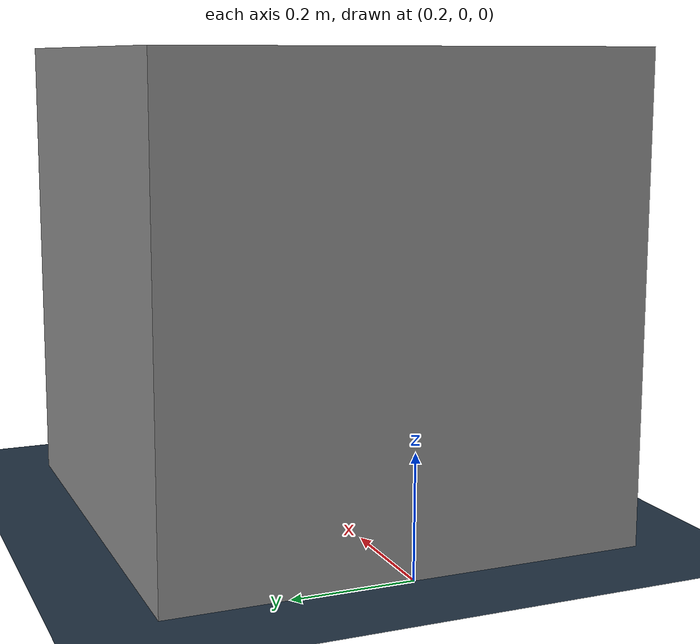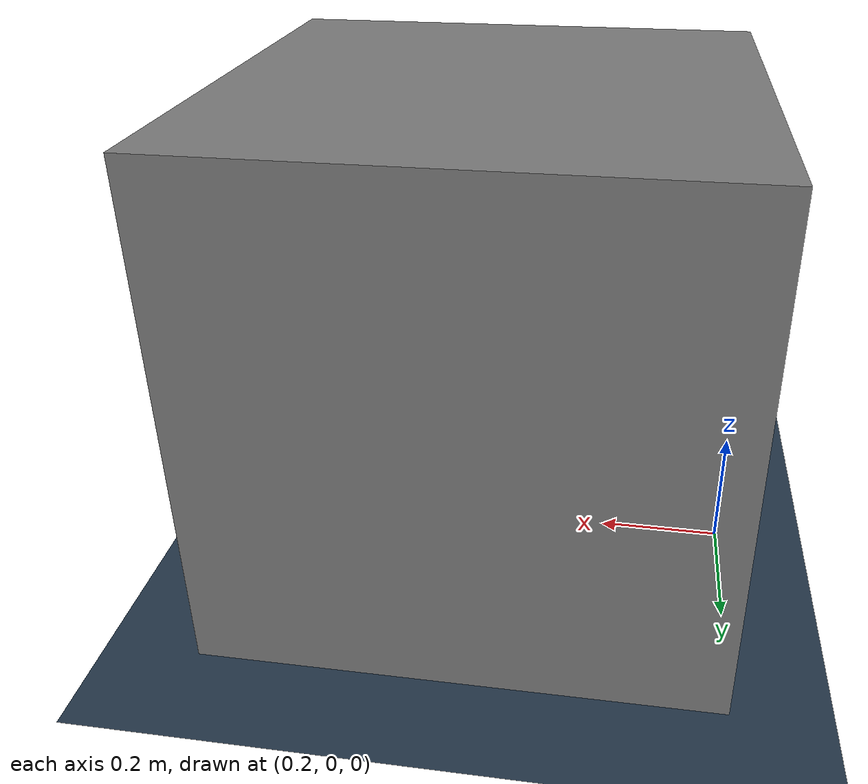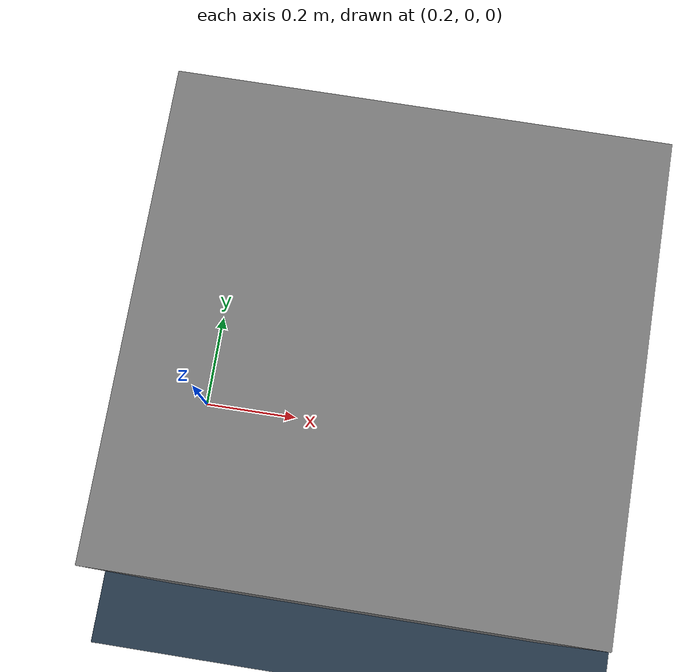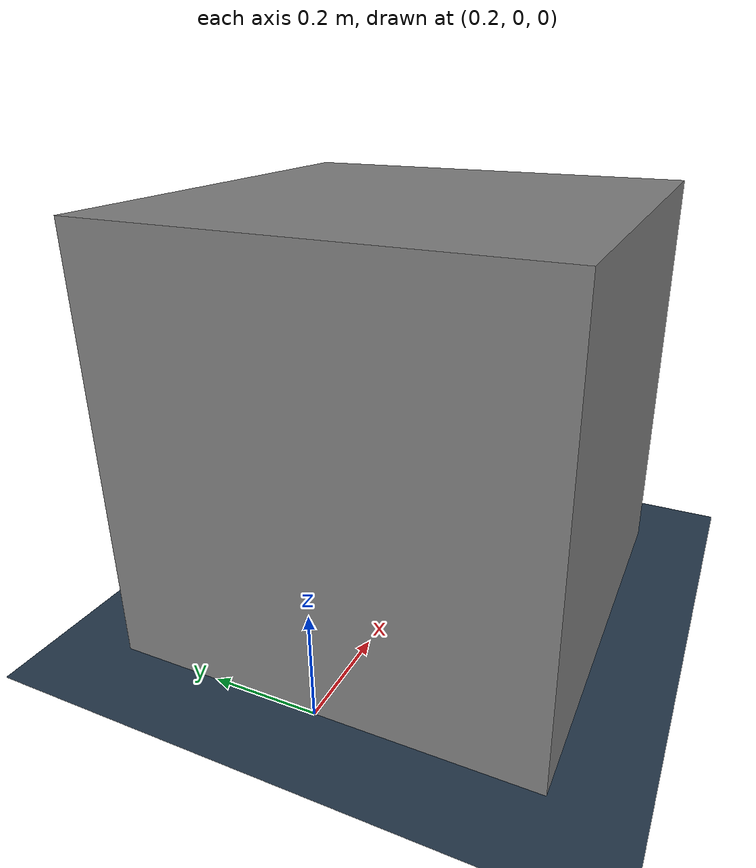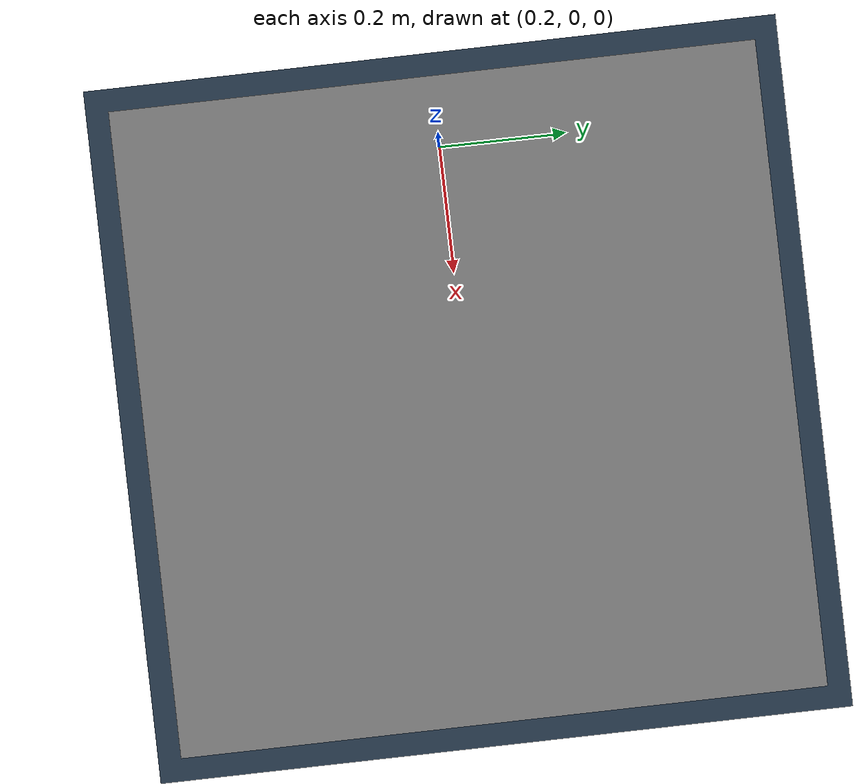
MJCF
<mujoco model="table_arena">
  <asset>
    <texture builtin="gradient" height="256" rgb1=".9 .9 1." rgb2=".2 .3 .4" type="skybox" width="256"/>
    <texture builtin="checker" height="512" name="texplane" rgb1=".2 .3 .4" rgb2=".1 0.15 0.2" type="2d" width="512"/>
    <material name="floorplane" reflectance="0.5" texrepeat="1 1" texture="texplane" texuniform="true"/>
  </asset>
  <worldbody>
    <geom condim="3" material="floorplane" name="floor" pos="0 0 0" size="3 3 .125" type="plane"/>
    <body name="table" pos="0 0 0.4">
      <geom pos="0.6 0 0" size="0.4 0.4 0.4" type="box" name="table_collision" friction="1 0.005 0.0001"/>
      <geom pos="0.6 0 0" size="0.4 0.4 0.4" type="box" conaffinity="0" contype="0" group="1" name="table_visual"/>
      <site pos="0 0 0.4" name="table_top" size="0.001 0.001 0.001" rgba="0 0 0 0"/>
    </body>

    <light diffuse=".8 .8 .8" dir="0 -.15 -1" directional="false" pos="1 1 4.0" specular="0.3 0.3 0.3" castshadow="false"/>
    <light diffuse=".8 .8 .8" dir="0 -.15 -1" directional="false" pos="-3. -3. 4.0" specular="0.3 0.3 0.3" castshadow="false"/>
    <!-- front view -->
    <camera mode="fixed" name="frontview" pos="1.6 0 1.45" quat="0.56 0.43 0.43 0.56"/>
    <!-- bird view -->
    <camera mode="fixed" name="birdview" pos="-0.2 0 3.0" quat="0.7071 0 0 0.7071"/>
    <!-- agent view -->
    <camera mode="fixed" name="agentview" pos="0.5 0 1.35" quat="0.653 0.271 0.271 0.653"/>
  </worldbody>
</mujoco>
